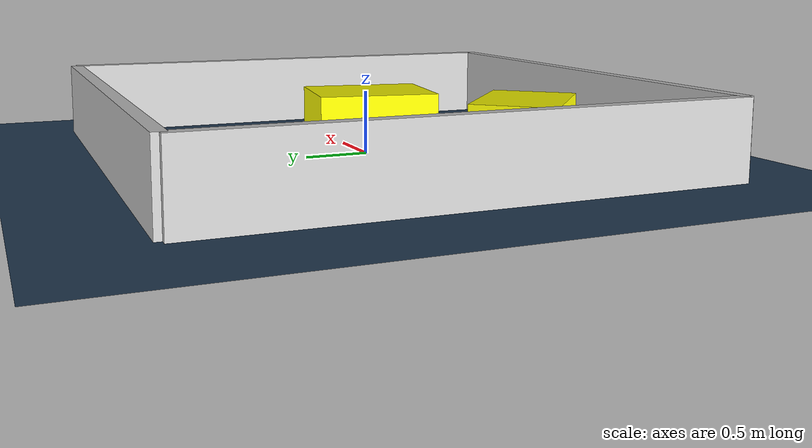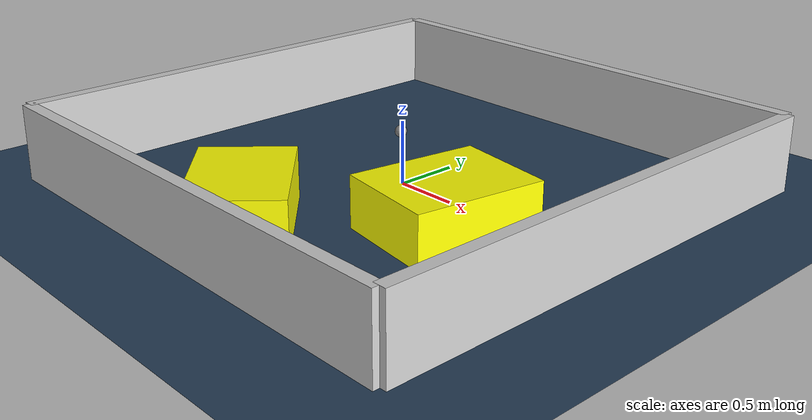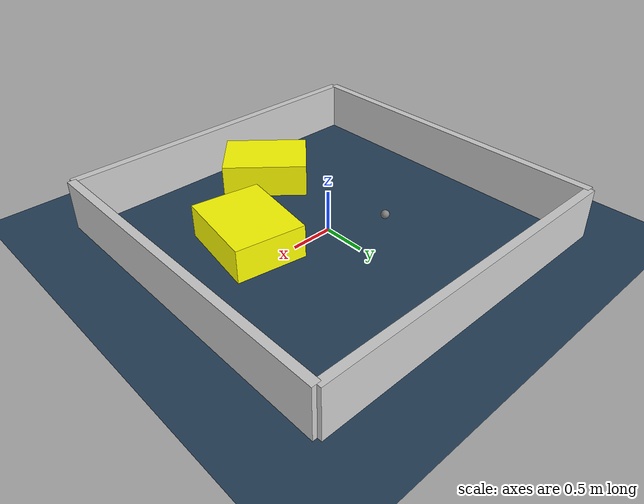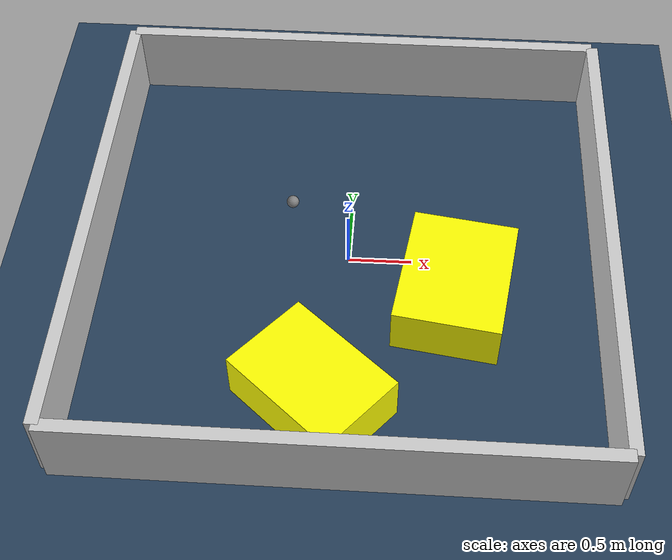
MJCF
<?xml version="1.0" ?>
<mujoco model="generated_environment">
  <option timestep="0.01" integrator="RK4" cone="elliptic"/>
  <default>
    <geom density="1"/>
  </default>
  <asset>
    <texture builtin="gradient" height="3072" rgb1="0.3 0.5 0.7" rgb2="0 0 0" type="skybox" width="512"/>
    <texture builtin="checker" height="300" mark="edge" markrgb="0.8 0.8 0.8" name="groundplane" rgb1="0.2 0.3 0.4" rgb2="0.1 0.2 0.3" type="2d" width="300"/>
    <material name="groundplane" reflectance="0.2" texrepeat="5 5" texture="groundplane" texuniform="true"/>
    <material name="robot" rgba="0.0 1.0 0.0 1"/>
  </asset>
  <worldbody>
    <light dir="0 0 -1" directional="true" pos="0 0 1.5"/>
    <geom condim="4" friction="1.0 0.005 0.001" material="groundplane" name="floor" size="0 0 0.05" type="plane"/>
    <body name="walls">
      <geom name="wall_1" condim="4" pos="-2.0 0.0 0.3" rgba="0.800000011920929 0.800000011920929 0.800000011920929 1.0" size="0.05 2.0 0.3" type="box"/>
      <geom name="wall_2" condim="4" pos="2.0 0.0 0.3" rgba="0.800000011920929 0.800000011920929 0.800000011920929 1.0" size="0.05 2.0 0.3" type="box"/>
      <geom name="wall_3" condim="4" pos="0.0 -2.0 0.3" rgba="0.800000011920929 0.800000011920929 0.800000011920929 1.0" size="2.0 0.05 0.3" type="box"/>
      <geom name="wall_4" condim="4" pos="0.0 2.0 0.3" rgba="0.800000011920929 0.800000011920929 0.800000011920929 1.0" size="2.0 0.05 0.3" type="box"/>
    </body>
    <body name="robot">
      <joint name="joint_x" type="slide" pos="0 0 0" axis="1 0 0"/>
      <joint name="joint_y" type="slide" pos="0 0 0" axis="0 1 0"/>
      <geom name="robot" type="sphere" pos="-0.4822909645315183 0.41962189722676735 0.2" size="0.05" mass="5." friction="1.0 0.005 0.0001" condim="4"/>
      <site name="sensor_ball"/>
    </body>
    <body name="obstacle_1_movable">
      <geom name="obstacle_1_movable" condim="4" pos="0.8405062574577704 -0.37586740691582543 0.2" euler="0 0 351.2976331169867" friction="1.0 0.005 0.001" rgba="1 1 0 1" size="0.4096410418538874 0.513925900086369 0.2" type="box" mass="0.1"/>
      <joint type="free"/>
    </body>
    <body name="obstacle_2_movable">
      <geom name="obstacle_2_movable" condim="4" pos="-0.18544433915786307 -1.3430815011302135 0.2" euler="0 0 48.92595572910639" friction="1.0 0.005 0.001" rgba="1 1 0 1" size="0.361236153357514 0.5057533846616518 0.2" type="box" mass="0.1"/>
      <joint type="free"/>
    </body>
  </worldbody>
  <actuator>
    <motor name="actuator_x" joint="joint_x" gear="1" ctrlrange="-1 1"/>
    <motor name="actuator_y" joint="joint_y" gear="1" ctrlrange="-1 1"/>
  </actuator>
</mujoco>
